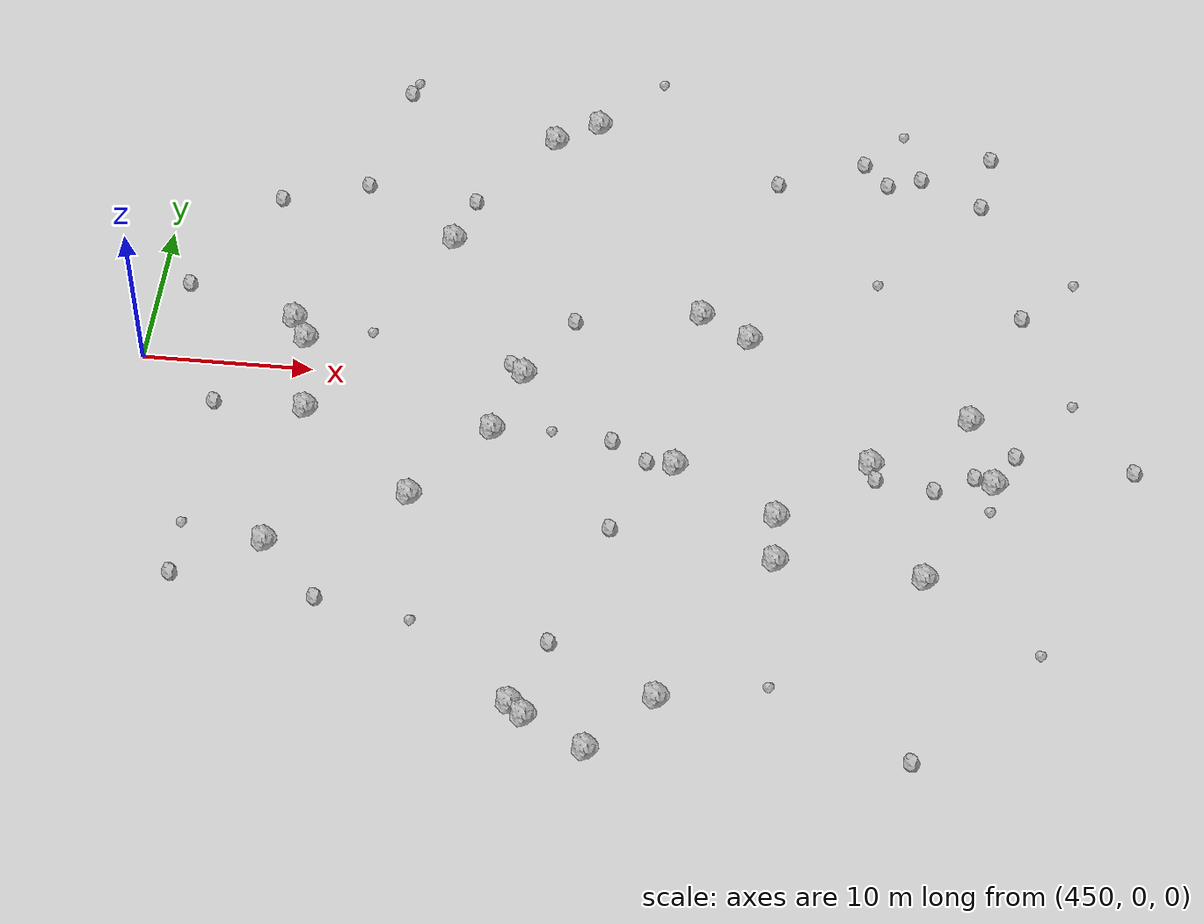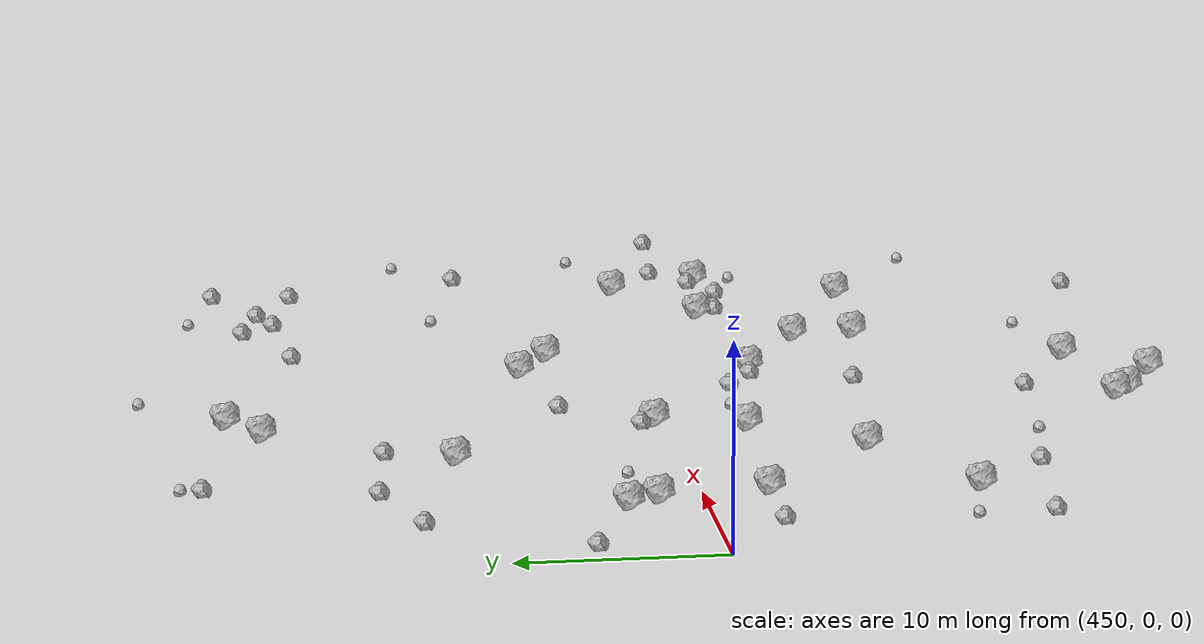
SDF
<sdf version="1.6">
 <world name="default">
  <include><uri>model://sun</uri></include>
  <model name="rock1_12_4">
   <include><uri>model://rock1</uri><pose>474.4162400044123 21.592723795492034 0.5 0 0 0</pose></include>
  </model>
  <model name="rock1_12_5">
   <include><uri>model://rock1</uri><pose>470.9874461286627 -3.731116037300037 0.5 0 0 0</pose></include>
  </model>
  <model name="rock1_12_6">
   <include><uri>model://rock1</uri><pose>472.2763435443039 0.6867730047466836 0.5 0 0 0</pose></include>
  </model>
  <model name="rock1_12_7">
   <include><uri>model://rock1</uri><pose>471.91160160130937 19.970500522593333 0.5 0 0 0</pose></include>
  </model>
  <model name="rock1_12_8">
   <include><uri>model://rock1</uri><pose>460.1197215373032 -3.193327705660895 0.5 0 0 0</pose></include>
  </model>
  <model name="rock1_12_9">
   <include><uri>model://rock1</uri><pose>466.8087550220297 10.980730152249997 0.5 0 0 0</pose></include>
  </model>
  <model name="rock1_12_10">
   <include><uri>model://rock1</uri><pose>487.76072527971115 -11.705039294108623 0.5 0 0 0</pose></include>
  </model>
  <model name="rock1_12_11">
   <include><uri>model://rock1</uri><pose>487.5842701497996 -8.547314697861967 0.5 0 0 0</pose></include>
  </model>
  <model name="rock1_12_12">
   <include><uri>model://rock1</uri><pose>466.96303835595955 -9.009550811070941 0.5 0 0 0</pose></include>
  </model>
  <model name="rock1_12_13">
   <include><uri>model://rock1</uri><pose>492.6070692345678 -4.19245235059903 0.5 0 0 0</pose></include>
  </model>
  <model name="rock1_12_14">
   <include><uri>model://rock1</uri><pose>485.0199681755823 4.661169533341344 0.5 0 0 0</pose></include>
  </model>
  <model name="rock1_12_15">
   <include><uri>model://rock1</uri><pose>482.1439402955623 -21.705549459367006 0.5 0 0 0</pose></include>
  </model>
  <model name="rock1_12_16">
   <include><uri>model://rock1</uri><pose>496.0411017060901 -12.172523352481448 0.5 0 0 0</pose></include>
  </model>
  <model name="rock1_12_17">
   <include><uri>model://rock1</uri><pose>478.7486338918084 -25.466087321894967 0.5 0 0 0</pose></include>
  </model>
  <model name="rock1_12_18">
   <include><uri>model://rock1</uri><pose>498.08095414076735 -0.33825842590222166 0.5 0 0 0</pose></include>
  </model>
  <model name="rock1_12_19">
   <include><uri>model://rock1</uri><pose>459.4619505044643 -13.15109009106789 0.5 0 0 0</pose></include>
  </model>
  <model name="rock1_12_20">
   <include><uri>model://rock1</uri><pose>459.2874691713156 2.1473275873020867 0.5 0 0 0</pose></include>
  </model>
  <model name="rock1_12_21">
   <include><uri>model://rock1</uri><pose>475.2254009892638 -23.61582010114988 0.5 0 0 0</pose></include>
  </model>
  <model name="rock1_12_22">
   <include><uri>model://rock1</uri><pose>482.0967062082947 6.31367674327565 0.5 0 0 0</pose></include>
  </model>
  <model name="rock1_12_23">
   <include><uri>model://rock1</uri><pose>499.61086983070703 -4.964381744322193 0.5 0 0 0</pose></include>
  </model>
  <model name="rock1_12_24">
   <include><uri>model://rock1</uri><pose>481.6028875421563 -5.343021566809149 0.5 0 0 0</pose></include>
  </model>
  <model name="rock1_12_25">
   <include><uri>model://rock1</uri><pose>458.38501588098075 3.676850877544304 0.5 0 0 0</pose></include>
  </model>
  <model name="rock1_12_26">
   <include><uri>model://rock1</uri><pose>474.3677066721667 -22.848979476087194 0.5 0 0 0</pose></include>
  </model>
  <model name="rock2_12_0">
   <include><uri>model://rock2</uri><pose>492.9072448843313 -5.167851509105596 0.3 0 0 0</pose></include>
  </model>
  <model name="rock2_12_1">
   <include><uri>model://rock2</uri><pose>498.4207915701859 21.096102078470494 0.3 0 0 0</pose></include>
  </model>
  <model name="rock2_12_2">
   <include><uri>model://rock2</uri><pose>478.41765773848954 -10.219162102264438 0.3 0 0 0</pose></include>
  </model>
  <model name="rock2_12_3">
   <include><uri>model://rock2</uri><pose>477.8687766930042 -3.8303377031987615 0.3 0 0 0</pose></include>
  </model>
  <model name="rock2_12_4">
   <include><uri>model://rock2</uri><pose>462.4963678220974 23.294826005807714 0.3 0 0 0</pose></include>
  </model>
  <model name="rock2_12_5">
   <include><uri>model://rock2</uri><pose>451.7658902982462 5.90151304495361 0.3 0 0 0</pose></include>
  </model>
  <model name="rock2_12_6">
   <include><uri>model://rock2</uri><pose>500.71439252995674 8.031513001974126 0.3 0 0 0</pose></include>
  </model>
  <model name="rock2_12_7">
   <include><uri>model://rock2</uri><pose>490.81021782500784 19.886917454638088 0.3 0 0 0</pose></include>
  </model>
  <model name="rock2_12_8">
   <include><uri>model://rock2</uri><pose>461.0520509635194 15.087448377120047 0.3 0 0 0</pose></include>
  </model>
  <model name="rock2_12_9">
   <include><uri>model://rock2</uri><pose>492.3049481933076 18.223703287286916 0.3 0 0 0</pose></include>
  </model>
  <model name="rock2_12_10">
   <include><uri>model://rock2</uri><pose>498.4675767363236 -4.480063133365302 0.3 0 0 0</pose></include>
  </model>
  <model name="rock2_12_11">
   <include><uri>model://rock2</uri><pose>495.92642804539264 -24.507867769331856 0.3 0 0 0</pose></include>
  </model>
  <model name="rock2_12_12">
   <include><uri>model://rock2</uri><pose>474.74887334029444 5.145956874274361 0.3 0 0 0</pose></include>
  </model>
  <model name="rock2_12_13">
   <include><uri>model://rock2</uri><pose>494.2930317718691 18.94397478268948 0.3 0 0 0</pose></include>
  </model>
  <model name="rock2_12_14">
   <include><uri>model://rock2</uri><pose>467.69066433981357 14.345037383497313 0.3 0 0 0</pose></include>
  </model>
  <model name="rock2_12_15">
   <include><uri>model://rock2</uri><pose>454.6358179847709 -15.778453479157818 0.3 0 0 0</pose></include>
  </model>
  <model name="rock2_12_16">
   <include><uri>model://rock2</uri><pose>497.99242135131635 16.994335478367063 0.3 0 0 0</pose></include>
  </model>
  <model name="rock2_12_17">
   <include><uri>model://rock2</uri><pose>462.8454344454751 -16.716607932704946 0.3 0 0 0</pose></include>
  </model>
  <model name="rock2_12_18">
   <include><uri>model://rock2</uri><pose>500.69579898719616 -2.691566437416455 0.3 0 0 0</pose></include>
  </model>
  <model name="rock2_12_19">
   <include><uri>model://rock2</uri><pose>475.97497916033893 -18.523721627940027 0.3 0 0 0</pose></include>
  </model>
  <model name="rock2_12_20">
   <include><uri>model://rock2</uri><pose>507.3957980906001 -3.2226726612044168 0.3 0 0 0</pose></include>
  </model>
  <model name="rock2_12_21">
   <include><uri>model://rock2</uri><pose>479.96422667193593 -5.170181598511704 0.3 0 0 0</pose></include>
  </model>
  <model name="rock2_12_22">
   <include><uri>model://rock2</uri><pose>496.24002693822507 -5.665396752067263 0.3 0 0 0</pose></include>
  </model>
  <model name="rock2_12_23">
   <include><uri>model://rock2</uri><pose>471.44855747708897 1.4499515282374347 0.3 0 0 0</pose></include>
  </model>
  <model name="rock2_12_24">
   <include><uri>model://rock2</uri><pose>454.79914528771343 -3.117757781047967 0.3 0 0 0</pose></include>
  </model>
  <model name="rock2_12_25">
   <include><uri>model://rock2</uri><pose>456.01141403257924 13.412292006661467 0.3 0 0 0</pose></include>
  </model>
  <model name="rock2_12_26">
   <include><uri>model://rock2</uri><pose>485.7108954056317 17.65534550577022 0.3 0 0 0</pose></include>
  </model>
  <model name="rock3_12_0">
   <include><uri>model://rock3</uri><pose>474.59896538626356 21.851864402751445 0.2 0 0 0</pose></include>
  </model>
  <model name="rock3_12_1">
   <include><uri>model://rock3</uri><pose>454.59540138724117 -12.174742974789556 0.2 0 0 0</pose></include>
  </model>
  <model name="rock3_12_2">
   <include><uri>model://rock3</uri><pose>462.7841594143094 24.27415277610512 0.2 0 0 0</pose></include>
  </model>
  <model name="rock3_12_3">
   <include><uri>model://rock3</uri><pose>499.4184142541264 -6.878772434196833 0.2 0 0 0</pose></include>
  </model>
  <model name="rock3_12_4">
   <include><uri>model://rock3</uri><pose>492.1727439811725 9.909522706583708 0.2 0 0 0</pose></include>
  </model>
  <model name="rock3_12_5">
   <include><uri>model://rock3</uri><pose>493.03924705229605 22.5614665943882 0.2 0 0 0</pose></include>
  </model>
  <model name="rock3_12_6">
   <include><uri>model://rock3</uri><pose>502.51333717542 -16.710825242308772 0.2 0 0 0</pose></include>
  </model>
  <model name="rock3_12_7">
   <include><uri>model://rock3</uri><pose>488.0553200300758 -20.313900458233213 0.2 0 0 0</pose></include>
  </model>
  <model name="rock3_12_8">
   <include><uri>model://rock3</uri><pose>463.0700129017038 3.115962717196034 0.2 0 0 0</pose></include>
  </model>
  <model name="rock3_12_9">
   <include><uri>model://rock3</uri><pose>503.80708915148574 1.464248587384823 0.2 0 0 0</pose></include>
  </model>
  <model name="rock3_12_10">
   <include><uri>model://rock3</uri><pose>477.96364010040645 25.69354156300485 0.2 0 0 0</pose></include>
  </model>
  <model name="rock3_12_11">
   <include><uri>model://rock3</uri><pose>503.65090075913656 11.039179512740873 0.2 0 0 0</pose></include>
  </model>
  <model name="rock3_12_12">
   <include><uri>model://rock3</uri><pose>468.2449552796075 -17.74076031422284 0.2 0 0 0</pose></include>
  </model>
  <model name="rock3_12_13">
   <include><uri>model://rock3</uri><pose>474.34918841993533 -3.420497913766269 0.2 0 0 0</pose></include>
  </model>
 </world>
</sdf>
